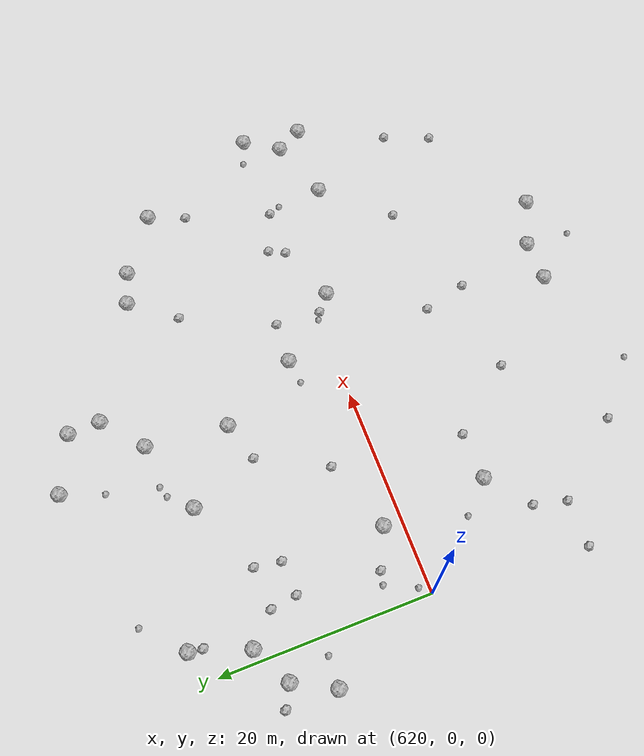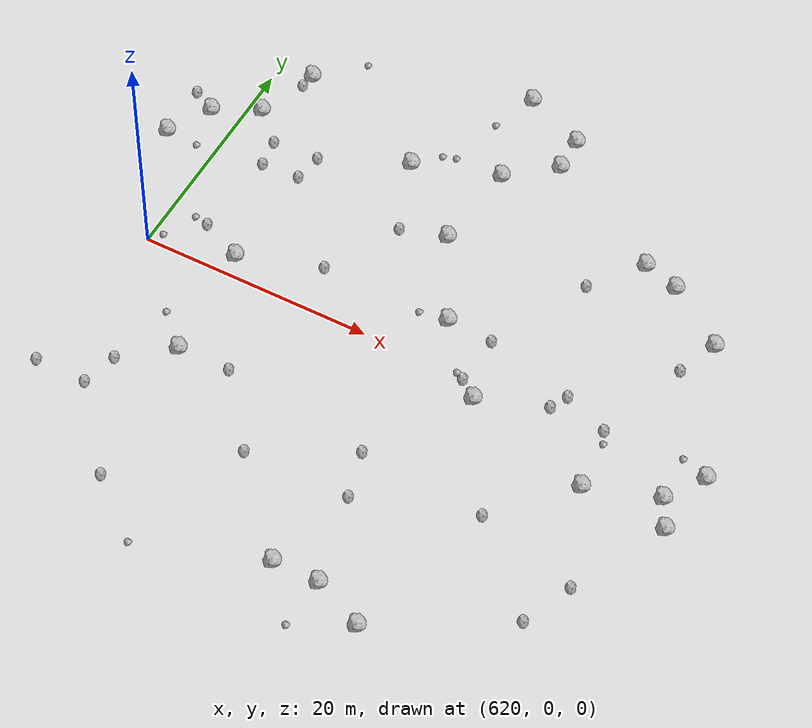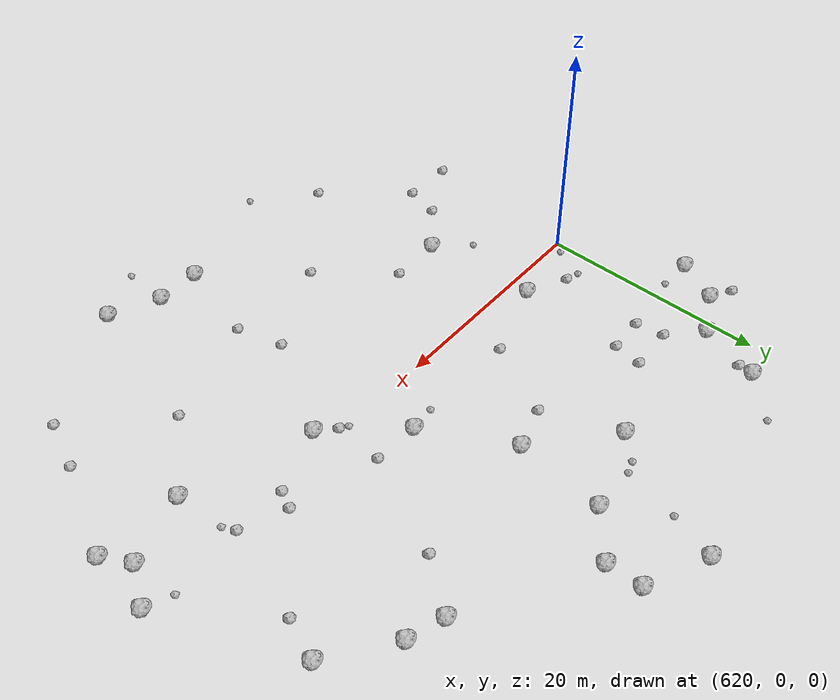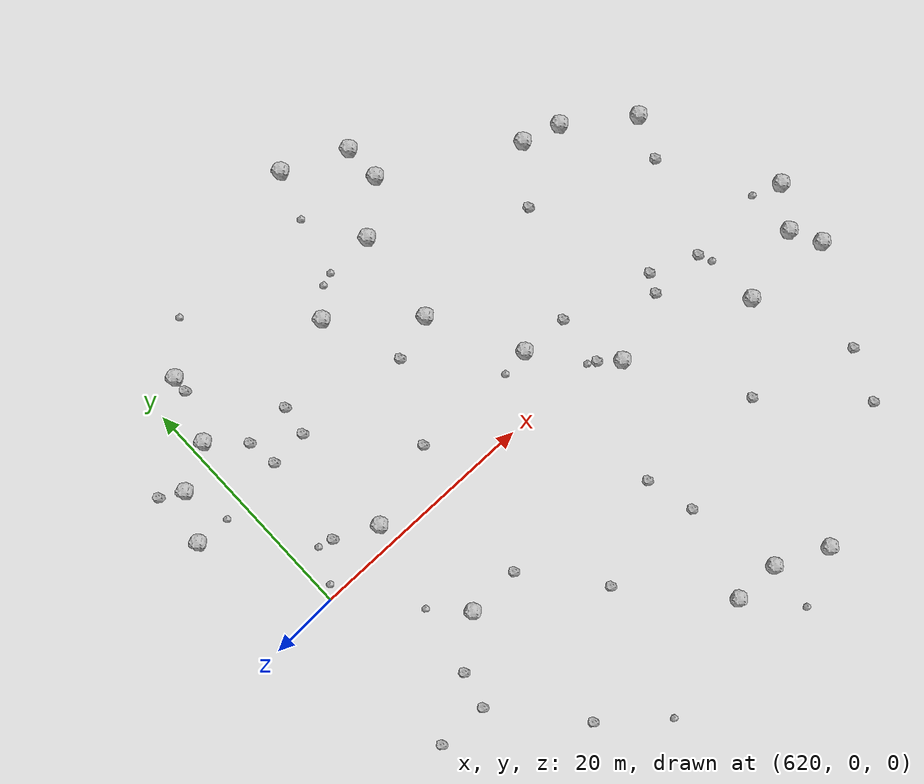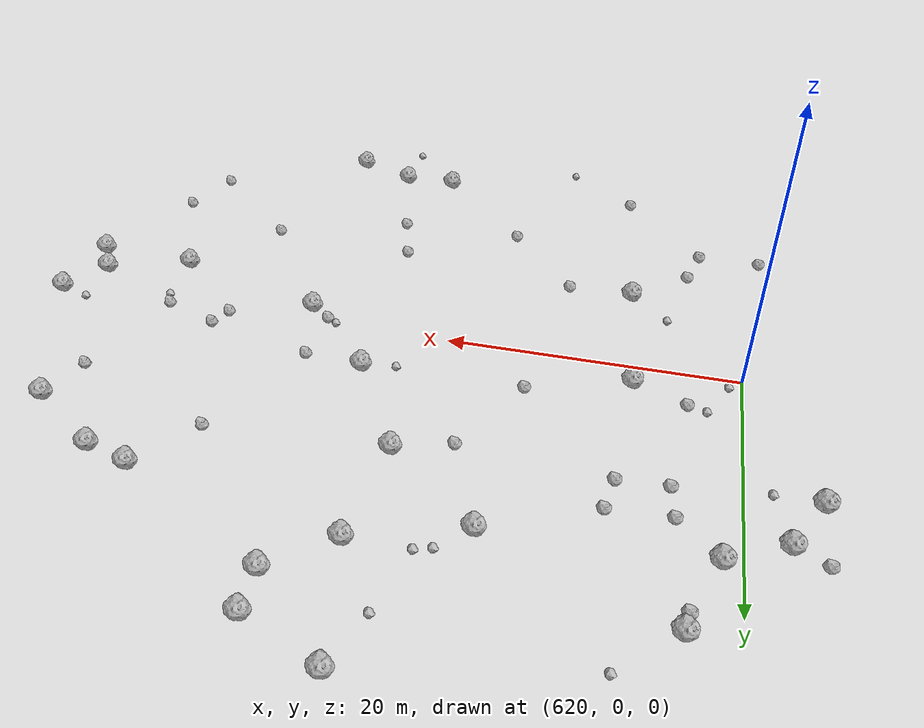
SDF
<sdf version="1.6">
 <world name="default">
  <include><uri>model://sun</uri></include>
  <model name="rock1_16_3">
   <include><uri>model://rock1</uri><pose>650.4935090328214 -1.6458294412974226 0.5 0 0 0</pose></include>
  </model>
  <model name="rock1_16_4">
   <include><uri>model://rock1</uri><pose>656.5178973038167 16.733868523629255 0.5 0 0 0</pose></include>
  </model>
  <model name="rock1_16_5">
   <include><uri>model://rock1</uri><pose>645.8805629121737 22.694571040593004 0.5 0 0 0</pose></include>
  </model>
  <model name="rock1_16_6">
   <include><uri>model://rock1</uri><pose>627.1520138661662 1.7885790390002434 0.5 0 0 0</pose></include>
  </model>
  <model name="rock1_16_7">
   <include><uri>model://rock1</uri><pose>621.2230472987585 16.313303290247475 0.5 0 0 0</pose></include>
  </model>
  <model name="rock1_16_8">
   <include><uri>model://rock1</uri><pose>645.8039300144181 25.768101216550093 0.5 0 0 0</pose></include>
  </model>
  <model name="rock1_16_9">
   <include><uri>model://rock1</uri><pose>664.7822092744742 11.983210929008045 0.5 0 0 0</pose></include>
  </model>
  <model name="rock1_16_10">
   <include><uri>model://rock1</uri><pose>661.5203477602266 -5.022704368167432 0.5 0 0 0</pose></include>
  </model>
  <model name="rock1_16_11">
   <include><uri>model://rock1</uri><pose>617.4567813692865 14.367729850209109 0.5 0 0 0</pose></include>
  </model>
  <model name="rock1_16_12">
   <include><uri>model://rock1</uri><pose>623.0463365720037 21.657067504393098 0.5 0 0 0</pose></include>
  </model>
  <model name="rock1_16_13">
   <include><uri>model://rock1</uri><pose>634.923040589425 17.124886608534858 0.5 0 0 0</pose></include>
  </model>
  <model name="rock1_16_14">
   <include><uri>model://rock1</uri><pose>615.4439854672232 10.612895295581154 0.5 0 0 0</pose></include>
  </model>
  <model name="rock1_16_15">
   <include><uri>model://rock1</uri><pose>644.376295177191 -22.10238574967712 0.5 0 0 0</pose></include>
  </model>
  <model name="rock1_16_16">
   <include><uri>model://rock1</uri><pose>669.5181627272059 0.20004419810487306 0.5 0 0 0</pose></include>
  </model>
  <model name="rock1_16_17">
   <include><uri>model://rock1</uri><pose>652.5979803045996 -23.988623130921486 0.5 0 0 0</pose></include>
  </model>
  <model name="rock1_16_18">
   <include><uri>model://rock1</uri><pose>667.4344376620768 -3.0181570526689434 0.5 0 0 0</pose></include>
  </model>
  <model name="rock1_16_19">
   <include><uri>model://rock1</uri><pose>659.6082953113876 15.755510788290763 0.5 0 0 0</pose></include>
  </model>
  <model name="rock1_16_20">
   <include><uri>model://rock1</uri><pose>641.2084378098784 11.69290746059849 0.5 0 0 0</pose></include>
  </model>
  <model name="rock1_16_21">
   <include><uri>model://rock1</uri><pose>648.2892768081844 -22.08743122024142 0.5 0 0 0</pose></include>
  </model>
  <model name="rock1_16_22">
   <include><uri>model://rock1</uri><pose>645.199860835035 4.20471859711045 0.5 0 0 0</pose></include>
  </model>
  <model name="rock1_16_23">
   <include><uri>model://rock1</uri><pose>640.5485805500381 28.14547910644589 0.5 0 0 0</pose></include>
  </model>
  <model name="rock1_16_24">
   <include><uri>model://rock1</uri><pose>668.7638708242149 -5.47812081517452 0.5 0 0 0</pose></include>
  </model>
  <model name="rock1_16_25">
   <include><uri>model://rock1</uri><pose>627.9570142525449 -8.39640694928282 0.5 0 0 0</pose></include>
  </model>
  <model name="rock1_16_26">
   <include><uri>model://rock1</uri><pose>642.0577064126147 19.508046268387957 0.5 0 0 0</pose></include>
  </model>
  <model name="rock2_16_0">
   <include><uri>model://rock2</uri><pose>637.4507776863068 -14.46147087350111 0.3 0 0 0</pose></include>
  </model>
  <model name="rock2_16_1">
   <include><uri>model://rock2</uri><pose>656.8566742255705 2.035510714843781 0.3 0 0 0</pose></include>
  </model>
  <model name="rock2_16_2">
   <include><uri>model://rock2</uri><pose>660.732833332625 0.4722256482618121 0.3 0 0 0</pose></include>
  </model>
  <model name="rock2_16_3">
   <include><uri>model://rock2</uri><pose>623.2251339706173 -14.683990200998885 0.3 0 0 0</pose></include>
  </model>
  <model name="rock2_16_4">
   <include><uri>model://rock2</uri><pose>627.4911558379684 11.412223667870364 0.3 0 0 0</pose></include>
  </model>
  <model name="rock2_16_5">
   <include><uri>model://rock2</uri><pose>618.7655733555297 -14.651727371108104 0.3 0 0 0</pose></include>
  </model>
  <model name="rock2_16_6">
   <include><uri>model://rock2</uri><pose>632.497026965193 -8.309579393123396 0.3 0 0 0</pose></include>
  </model>
  <model name="rock2_16_7">
   <include><uri>model://rock2</uri><pose>664.8662090366987 -13.516081853105163 0.3 0 0 0</pose></include>
  </model>
  <model name="rock2_16_8">
   <include><uri>model://rock2</uri><pose>649.1797854165004 3.98603399137194 0.3 0 0 0</pose></include>
  </model>
  <model name="rock2_16_9">
   <include><uri>model://rock2</uri><pose>653.2524798849056 12.536940041448325 0.3 0 0 0</pose></include>
  </model>
  <model name="rock2_16_10">
   <include><uri>model://rock2</uri><pose>622.8356453570253 20.372447540127943 0.3 0 0 0</pose></include>
  </model>
  <model name="rock2_16_11">
   <include><uri>model://rock2</uri><pose>624.2172673478825 11.24124386280112 0.3 0 0 0</pose></include>
  </model>
  <model name="rock2_16_12">
   <include><uri>model://rock2</uri><pose>648.9126199605504 -0.3450213926487393 0.3 0 0 0</pose></include>
  </model>
  <model name="rock2_16_13">
   <include><uri>model://rock2</uri><pose>628.9975460582634 -21.56507592539947 0.3 0 0 0</pose></include>
  </model>
  <model name="rock2_16_14">
   <include><uri>model://rock2</uri><pose>624.0283026388289 -11.577068486738483 0.3 0 0 0</pose></include>
  </model>
  <model name="rock2_16_15">
   <include><uri>model://rock2</uri><pose>663.120379352772 -17.824169524634478 0.3 0 0 0</pose></include>
  </model>
  <model name="rock2_16_16">
   <include><uri>model://rock2</uri><pose>623.855157343807 13.738815378285167 0.3 0 0 0</pose></include>
  </model>
  <model name="rock2_16_17">
   <include><uri>model://rock2</uri><pose>637.3732172960938 10.561214671841824 0.3 0 0 0</pose></include>
  </model>
  <model name="rock2_16_18">
   <include><uri>model://rock2</uri><pose>663.4105126653715 8.514052683780747 0.3 0 0 0</pose></include>
  </model>
  <model name="rock2_16_19">
   <include><uri>model://rock2</uri><pose>646.4923511373845 -14.315844910510538 0.3 0 0 0</pose></include>
  </model>
  <model name="rock2_16_20">
   <include><uri>model://rock2</uri><pose>645.4120544601783 -10.196183890338553 0.3 0 0 0</pose></include>
  </model>
  <model name="rock2_16_21">
   <include><uri>model://rock2</uri><pose>627.8853274746364 13.929492276128542 0.3 0 0 0</pose></include>
  </model>
  <model name="rock2_16_22">
   <include><uri>model://rock2</uri><pose>623.5147705499195 3.5117955968718846 0.3 0 0 0</pose></include>
  </model>
  <model name="rock2_16_23">
   <include><uri>model://rock2</uri><pose>656.1092680477178 0.5147712748354003 0.3 0 0 0</pose></include>
  </model>
  <model name="rock2_16_24">
   <include><uri>model://rock2</uri><pose>634.024029727811 4.162297979392697 0.3 0 0 0</pose></include>
  </model>
  <model name="rock2_16_25">
   <include><uri>model://rock2</uri><pose>615.448071462148 15.464662976179085 0.3 0 0 0</pose></include>
  </model>
  <model name="rock2_16_26">
   <include><uri>model://rock2</uri><pose>656.14789817187 -10.962806484881774 0.3 0 0 0</pose></include>
  </model>
  <model name="rock3_16_0">
   <include><uri>model://rock3</uri><pose>661.2000993924528 -0.6829684401777953 0.2 0 0 0</pose></include>
  </model>
  <model name="rock3_16_1">
   <include><uri>model://rock3</uri><pose>625.1988275982278 -5.732434443245634 0.2 0 0 0</pose></include>
  </model>
  <model name="rock3_16_2">
   <include><uri>model://rock3</uri><pose>626.4926647122181 25.029742785333767 0.2 0 0 0</pose></include>
  </model>
  <model name="rock3_16_3">
   <include><uri>model://rock3</uri><pose>622.2149442206502 3.781151842922384 0.2 0 0 0</pose></include>
  </model>
  <model name="rock3_16_4">
   <include><uri>model://rock3</uri><pose>648.1755104328471 0.006376896910573748 0.2 0 0 0</pose></include>
  </model>
  <model name="rock3_16_5">
   <include><uri>model://rock3</uri><pose>639.062665913775 24.220342740505984 0.2 0 0 0</pose></include>
  </model>
  <model name="rock3_16_6">
   <include><uri>model://rock3</uri><pose>633.9815232235671 -25.798769151877565 0.2 0 0 0</pose></include>
  </model>
  <model name="rock3_16_7">
   <include><uri>model://rock3</uri><pose>637.8797508158106 19.42749026365894 0.2 0 0 0</pose></include>
  </model>
  <model name="rock3_16_8">
   <include><uri>model://rock3</uri><pose>667.1746019829084 1.004149458980887 0.2 0 0 0</pose></include>
  </model>
  <model name="rock3_16_9">
   <include><uri>model://rock3</uri><pose>620.8647556988382 0.9364239573399971 0.2 0 0 0</pose></include>
  </model>
  <model name="rock3_16_10">
   <include><uri>model://rock3</uri><pose>618.3071319198485 10.442262824946916 0.2 0 0 0</pose></include>
  </model>
  <model name="rock3_16_11">
   <include><uri>model://rock3</uri><pose>636.7931726389602 19.07659229888825 0.2 0 0 0</pose></include>
  </model>
  <model name="rock3_16_12">
   <include><uri>model://rock3</uri><pose>642.7622203739301 3.871539672318889 0.2 0 0 0</pose></include>
  </model>
  <model name="rock3_16_13">
   <include><uri>model://rock3</uri><pose>647.9503565839352 -26.432620378280326 0.2 0 0 0</pose></include>
  </model>
 </world>
</sdf>
